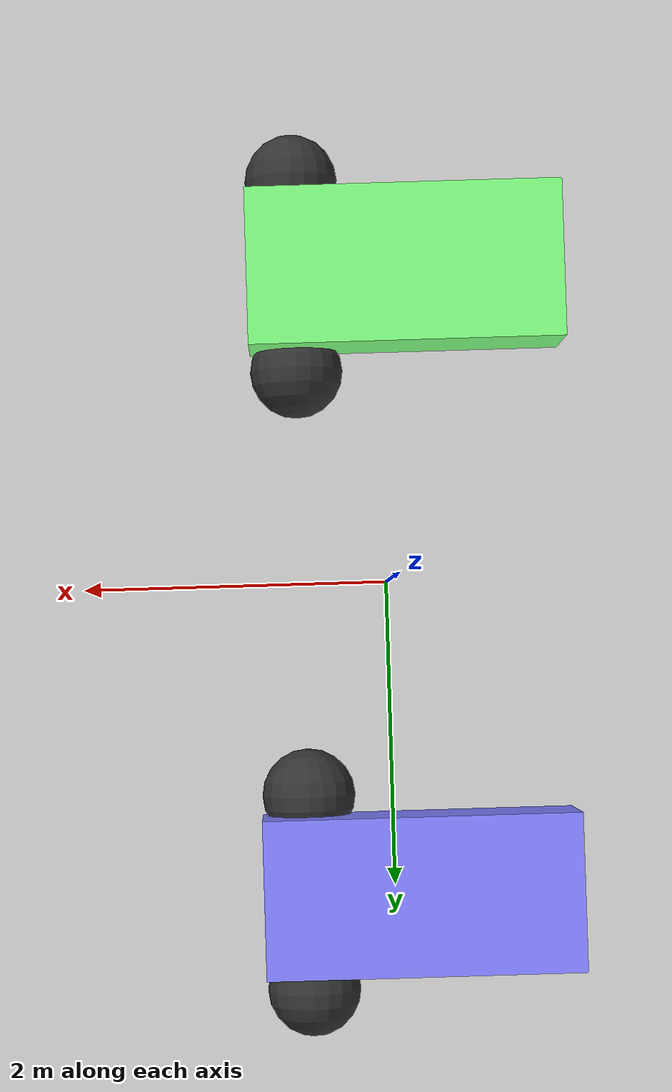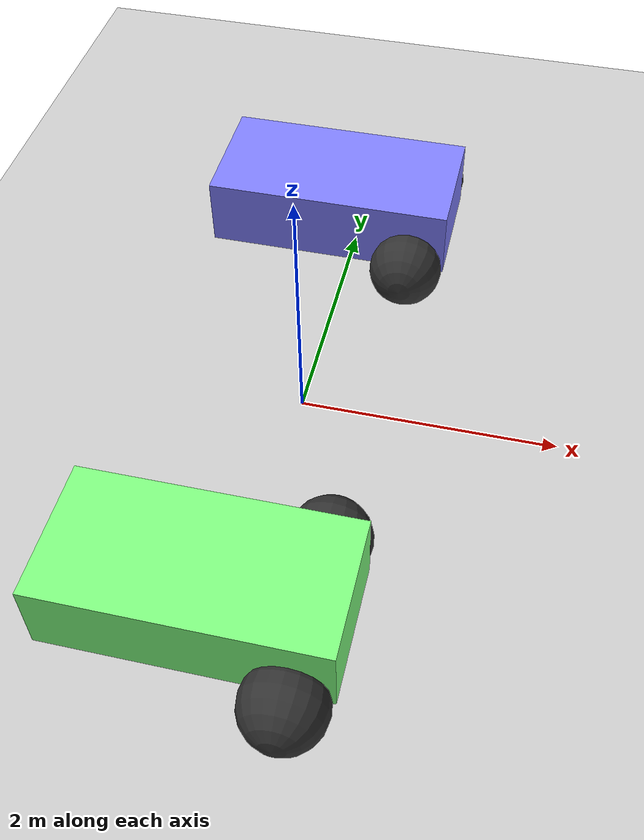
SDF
<?xml version="1.0" ?>
<sdf version="1.6">
  <world name="default">
    <plugin
     filename="libignition-gazebo-physics-system.so"
     name="ignition::gazebo::systems::Physics">
    </plugin>
    <plugin
      filename="libignition-gazebo-scene-broadcaster-system.so"
      name="ignition::gazebo::systems::SceneBroadcaster">
    </plugin>

    <gui fullscreen="0">

      <!-- 3D scene -->
      <plugin filename="GzScene3D" name="3D View">
        <ignition-gui>
          <title>3D View</title>
          <property type="bool" key="showTitleBar">false</property>
          <property type="string" key="state">docked</property>
        </ignition-gui>

        <engine>ogre2</engine>
        <scene>scene</scene>
        <ambient_light>0.4 0.4 0.4</ambient_light>
        <background_color>0.8 0.8 0.8</background_color>
        <camera_pose>-6 0 6 0 0.5 0</camera_pose>
      </plugin>

      <!-- World control -->
      <plugin filename="WorldControl" name="World control">
        <ignition-gui>
          <title>World control</title>
          <property type="bool" key="showTitleBar">false</property>
          <property type="bool" key="resizable">false</property>
          <property type="double" key="height">72</property>
          <property type="double" key="width">121</property>
          <property type="double" key="z">1</property>

          <property type="string" key="state">floating</property>
          <anchors target="3D View">
            <line own="left" target="left"/>
            <line own="bottom" target="bottom"/>
          </anchors>
        </ignition-gui>

        <play_pause>true</play_pause>
        <step>true</step>
        <start_paused>true</start_paused>
        <service>/world/default/control</service>
        <stats_topic>/world/default/stats</stats_topic>

      </plugin>

      <!--World statistics -->
      <plugin filename="WorldStats" name="World stats">
        <ignition-gui>
          <title>World stats</title>
          <property type="bool" key="showTitleBar">false</property>
          <property type="bool" key="resizable">false</property>
          <property type="double" key="height">110</property>
          <property type="double" key="width">290</property>
          <property type="double" key="z">1</property>

          <property type="string" key="state">floating</property>
          <anchors target="3D View">
            <line own="right" target="right"/>
            <line own="bottom" target="bottom"/>
          </anchors>
        </ignition-gui>

        <sim_time>true</sim_time>
        <real_time>true</real_time>
        <real_time_factor>true</real_time_factor>
        <iterations>true</iterations>
        <topic>/world/default/stats</topic>

      </plugin>

    </gui>

    <scene>
      <ambient>0.8 0.8 0.8 1.0</ambient>
      <background>0.34 0.39 0.43 1.0</background>
      <grid>false</grid>
      <origin_visual>false</origin_visual>
    </scene>

    <light type="directional" name="sun">
      <cast_shadows>true</cast_shadows>
      <pose>0 0 10 0 0 0</pose>
      <diffuse>0.8 0.8 0.8 1</diffuse>
      <specular>0.2 0.2 0.2 1</specular>
      <attenuation>
        <range>1000</range>
        <constant>0.9</constant>
        <linear>0.01</linear>
        <quadratic>0.001</quadratic>
      </attenuation>
      <direction>-0.5 0.1 -0.9</direction>
    </light>

    <model name="ground_plane">
      <static>true</static>
      <pose>30 0 0 0 0 0</pose>
      <link name="link">
        <collision name="collision">
          <pose>0 0 -5 0 0 0</pose>
          <geometry>
            <box>
              <size>100 100 10</size>
            </box>
          </geometry>
        </collision>
        <visual name="visual">
          <pose>0 0 -5 0 0 0</pose>
          <geometry>
            <box>
              <size>100 100 10</size>
            </box>
          </geometry>
          <material>
            <ambient>0.8 0.8 0.8 1</ambient>
            <diffuse>0.8 0.8 0.8 1</diffuse>
            <specular>0.8 0.8 0.8 1</specular>
          </material>
        </visual>
      </link>
    </model>

    <model name='vehicle_green'>
      <pose>0 -2 0.325 0 0 0</pose>
      <link name='chassis_green'>
        <pose>-0.151427 -0 0.175 0 -0 0</pose>
        <inertial>
          <mass>1.14395</mass>
          <inertia>
            <ixx>0.126164</ixx>
            <ixy>0</ixy>
            <ixz>0</ixz>
            <iyy>0.416519</iyy>
            <iyz>0</iyz>
            <izz>0.481014</izz>
          </inertia>
        </inertial>
        <visual name='visual'>
          <geometry>
            <box>
              <size>2.01142 1 0.568726</size>
            </box>
          </geometry>
          <material>
            <ambient>0.5 1.0 0.5 1</ambient>
            <diffuse>0.5 1.0 0.5 1</diffuse>
            <specular>0.5 1.0 0.5 1</specular>
          </material>
        </visual>
        <collision name='collision'>
          <geometry>
            <box>
              <size>2.01142 1 0.568726</size>
            </box>
          </geometry>
        </collision>
      </link>

      <link name='left_wheel_green'>
        <pose>0.554283 0.625029 -0.025 -1.5707 0 0</pose>
        <inertial>
          <mass>2</mass>
          <inertia>
            <ixx>0.145833</ixx>
            <ixy>0</ixy>
            <ixz>0</ixz>
            <iyy>0.145833</iyy>
            <iyz>0</iyz>
            <izz>0.125</izz>
          </inertia>
        </inertial>
        <visual name='visual'>
          <geometry>
            <sphere>
              <radius>0.3</radius>
            </sphere>
          </geometry>
          <material>
            <ambient>0.2 0.2 0.2 1</ambient>
            <diffuse>0.2 0.2 0.2 1</diffuse>
            <specular>0.2 0.2 0.2 1</specular>
          </material>
        </visual>
        <collision name='collision'>
          <geometry>
            <sphere>
              <radius>0.3</radius>
            </sphere>
          </geometry>
        </collision>
      </link>

      <link name='right_wheel_green'>
        <pose>0.554282 -0.625029 -0.025 -1.5707 0 0</pose>
        <inertial>
          <mass>2</mass>
          <inertia>
            <ixx>0.145833</ixx>
            <ixy>0</ixy>
            <ixz>0</ixz>
            <iyy>0.145833</iyy>
            <iyz>0</iyz>
            <izz>0.125</izz>
          </inertia>
        </inertial>
        <visual name='visual'>
          <geometry>
            <sphere>
              <radius>0.3</radius>
            </sphere>
          </geometry>
          <material>
            <ambient>0.2 0.2 0.2 1</ambient>
            <diffuse>0.2 0.2 0.2 1</diffuse>
            <specular>0.2 0.2 0.2 1</specular>
          </material>
        </visual>
        <collision name='collision'>
          <geometry>
            <sphere>
              <radius>0.3</radius>
            </sphere>
          </geometry>
        </collision>
      </link>

      <link name='caster_green'>
        <pose>-0.957138 -0 -0.125 0 -0 0</pose>
        <inertial>
          <mass>1</mass>
          <inertia>
            <ixx>0.1</ixx>
            <ixy>0</ixy>
            <ixz>0</ixz>
            <iyy>0.1</iyy>
            <iyz>0</iyz>
            <izz>0.1</izz>
          </inertia>
        </inertial>
        <visual name='visual'>
          <geometry>
            <sphere>
              <radius>0.2</radius>
            </sphere>
          </geometry>
          <material>
            <ambient>0.2 0.2 0.2 1</ambient>
            <diffuse>0.2 0.2 0.2 1</diffuse>
            <specular>0.2 0.2 0.2 1</specular>
          </material>
        </visual>
        <collision name='collision'>
          <geometry>
            <sphere>
              <radius>0.2</radius>
            </sphere>
          </geometry>
        </collision>
      </link>

      <joint name='left_wheel_joint_green' type='revolute'>
        <parent>chassis_green</parent>
        <child>left_wheel_green</child>
        <axis>
          <xyz>0 0 1</xyz>
          <limit>
            <lower>-1.79769e+308</lower>
            <upper>1.79769e+308</upper>
          </limit>
        </axis>
      </joint>

      <joint name='right_wheel_joint_green' type='revolute'>
        <parent>chassis_green</parent>
        <child>right_wheel_green</child>
        <axis>
          <xyz>0 0 1</xyz>
          <limit>
            <lower>-1.79769e+308</lower>
            <upper>1.79769e+308</upper>
          </limit>
        </axis>
      </joint>

      <joint name='caster_wheel_green' type='ball'>
        <parent>chassis_green</parent>
        <child>caster_green</child>
      </joint>

      <plugin
        filename="libignition-gazebo-diff-drive-system.so"
        name="ignition::gazebo::systems::DiffDrive">
        <left_joint>left_wheel_joint_green</left_joint>
        <right_joint>right_wheel_joint_green</right_joint>
        <wheel_separation>1.25</wheel_separation>
        <wheel_radius>0.3</wheel_radius>
      </plugin>

      <plugin filename="libignition-gazebo-linearbatteryplugin-system.so"
        name="ignition::gazebo::systems::LinearBatteryPlugin">
        <!--Li-ion battery spec from LIR18650 datasheet-->
        <battery_name>linear_battery</battery_name>
        <voltage>4.2</voltage>
        <open_circuit_voltage_constant_coef>4.2</open_circuit_voltage_constant_coef>
        <open_circuit_voltage_linear_coef>-2.0</open_circuit_voltage_linear_coef>
        <initial_charge>2.5</initial_charge>
        <capacity>2.5 </capacity>
        <resistance>0.07</resistance>
        <smooth_current_tau>2.0</smooth_current_tau>
        <enable_recharge>true</enable_recharge>
        <!-- charging I = c / t, discharging I = P / V,
          charging I should be > discharging I -->
        <charging_time>3.0</charging_time>
        <soc_threshold>0.51</soc_threshold>
        <!-- Consumer-specific -->
        <power_load>2.1</power_load>
        <start_on_motion>true</start_on_motion>
      </plugin>

    </model>

    <model name='vehicle_blue'>
      <pose>0 2 0.325 0 0 0</pose>
      <link name='chassis_blue'>
        <pose>-0.151427 -0 0.175 0 -0 0</pose>
        <inertial>
          <mass>1.14395</mass>
          <inertia>
            <ixx>0.126164</ixx>
            <ixy>0</ixy>
            <ixz>0</ixz>
            <iyy>0.416519</iyy>
            <iyz>0</iyz>
            <izz>0.481014</izz>
          </inertia>
        </inertial>
        <visual name='visual'>
          <geometry>
            <box>
              <size>2.01142 1 0.568726</size>
            </box>
          </geometry>
          <material>
            <ambient>0.5 0.5 1.0 1</ambient>
            <diffuse>0.5 0.5 1.0 1</diffuse>
            <specular>0.5 0.5 1.0 1</specular>
          </material>
        </visual>
        <collision name='collision'>
          <geometry>
            <box>
              <size>2.01142 1 0.568726</size>
            </box>
          </geometry>
        </collision>
      </link>

      <link name='left_wheel_blue'>
        <pose>0.554283 0.625029 -0.025 -1.5707 0 0</pose>
        <inertial>
          <mass>2</mass>
          <inertia>
            <ixx>0.145833</ixx>
            <ixy>0</ixy>
            <ixz>0</ixz>
            <iyy>0.145833</iyy>
            <iyz>0</iyz>
            <izz>0.125</izz>
          </inertia>
        </inertial>
        <visual name='visual'>
          <geometry>
            <sphere>
              <radius>0.3</radius>
            </sphere>
          </geometry>
          <material>
            <ambient>0.2 0.2 0.2 1</ambient>
            <diffuse>0.2 0.2 0.2 1</diffuse>
            <specular>0.2 0.2 0.2 1</specular>
          </material>
        </visual>
        <collision name='collision'>
          <geometry>
            <sphere>
              <radius>0.3</radius>
            </sphere>
          </geometry>
        </collision>
      </link>

      <link name='right_wheel_blue'>
        <pose>0.554282 -0.625029 -0.025 -1.5707 0 0</pose>
        <inertial>
          <mass>2</mass>
          <inertia>
            <ixx>0.145833</ixx>
            <ixy>0</ixy>
            <ixz>0</ixz>
            <iyy>0.145833</iyy>
            <iyz>0</iyz>
            <izz>0.125</izz>
          </inertia>
        </inertial>
        <visual name='visual'>
          <geometry>
            <sphere>
              <radius>0.3</radius>
            </sphere>
          </geometry>
          <material>
            <ambient>0.2 0.2 0.2 1</ambient>
            <diffuse>0.2 0.2 0.2 1</diffuse>
            <specular>0.2 0.2 0.2 1</specular>
          </material>
        </visual>
        <collision name='collision'>
          <geometry>
            <sphere>
              <radius>0.3</radius>
            </sphere>
          </geometry>
        </collision>
      </link>

      <link name='caster_blue'>
        <pose>-0.957138 -0 -0.125 0 -0 0</pose>
        <inertial>
          <mass>1</mass>
          <inertia>
            <ixx>0.1</ixx>
            <ixy>0</ixy>
            <ixz>0</ixz>
            <iyy>0.1</iyy>
            <iyz>0</iyz>
            <izz>0.1</izz>
          </inertia>
        </inertial>
        <visual name='visual'>
          <geometry>
            <sphere>
              <radius>0.2</radius>
            </sphere>
          </geometry>
          <material>
            <ambient>0.2 0.2 0.2 1</ambient>
            <diffuse>0.2 0.2 0.2 1</diffuse>
            <specular>0.2 0.2 0.2 1</specular>
          </material>
        </visual>
        <collision name='collision'>
          <geometry>
            <sphere>
              <radius>0.2</radius>
            </sphere>
          </geometry>
        </collision>
      </link>

      <joint name='left_wheel_joint_blue' type='revolute'>
        <parent>chassis_blue</parent>
        <child>left_wheel_blue</child>
        <axis>
          <xyz>0 0 1</xyz>
          <limit>
            <lower>-1.79769e+308</lower>
            <upper>1.79769e+308</upper>
          </limit>
        </axis>
      </joint>

      <joint name='right_wheel_joint_blue' type='revolute'>
        <parent>chassis_blue</parent>
        <child>right_wheel_blue</child>
        <axis>
          <xyz>0 0 1</xyz>
          <limit>
            <lower>-1.79769e+308</lower>
            <upper>1.79769e+308</upper>
          </limit>
        </axis>
      </joint>

      <joint name='caster_wheel_blue' type='ball'>
        <parent>chassis_blue</parent>
        <child>caster_blue</child>
      </joint>

      <plugin
        filename="libignition-gazebo-diff-drive-system.so"
        name="ignition::gazebo::systems::DiffDrive">
        <left_joint>left_wheel_joint_blue</left_joint>
        <right_joint>right_wheel_joint_blue</right_joint>
        <wheel_separation>1.25</wheel_separation>
        <wheel_radius>0.3</wheel_radius>
      </plugin>

      <plugin filename="libignition-gazebo-linearbatteryplugin-system.so"
        name="ignition::gazebo::systems::LinearBatteryPlugin">
        <!--Li-ion battery spec from LIR18650 datasheet-->
        <battery_name>linear_battery</battery_name>
        <voltage>4.2</voltage>
        <open_circuit_voltage_constant_coef>4.2</open_circuit_voltage_constant_coef>
        <open_circuit_voltage_linear_coef>-2.0</open_circuit_voltage_linear_coef>
        <initial_charge>2.5</initial_charge>
        <capacity>2.5 </capacity>
        <resistance>0.07</resistance>
        <smooth_current_tau>2.0</smooth_current_tau>
        <enable_recharge>false</enable_recharge>
        <!-- charging I = c / t, discharging I = P / V,
          charging I should be > discharging I -->
        <charging_time>3.0</charging_time>
        <soc_threshold>0.51</soc_threshold>
        <!-- Consumer-specific -->
        <power_load>2.1</power_load>
        <start_on_motion>true</start_on_motion>
      </plugin>

    </model>

  </world>
</sdf>
